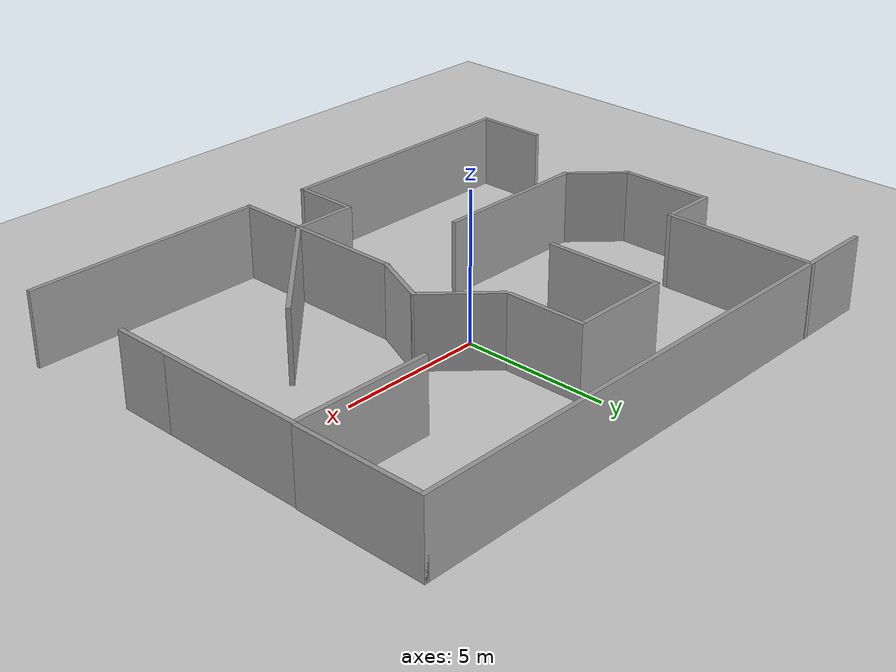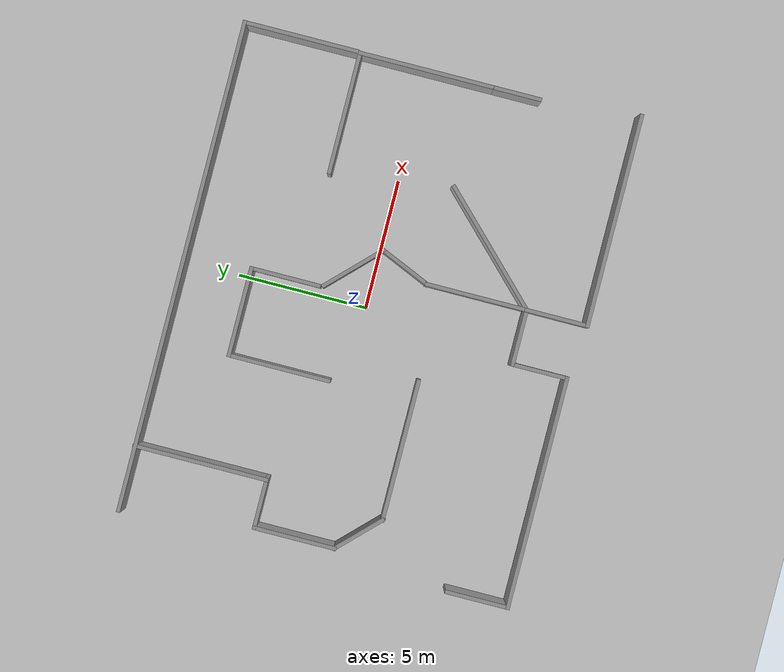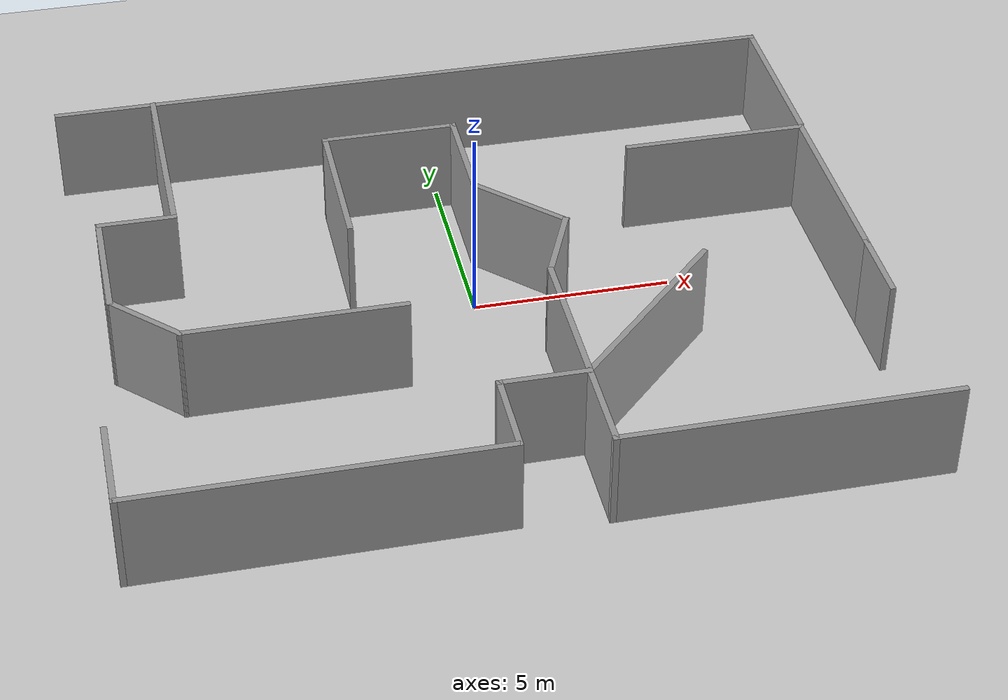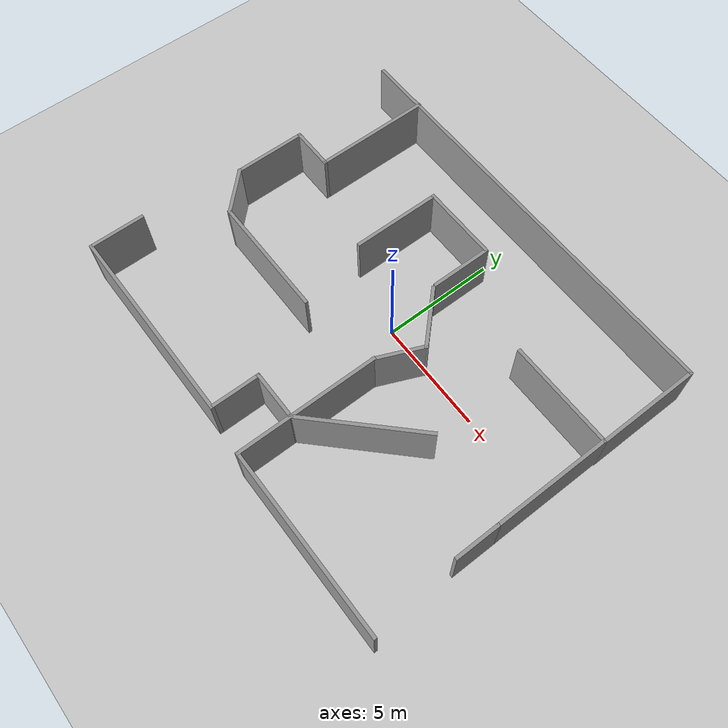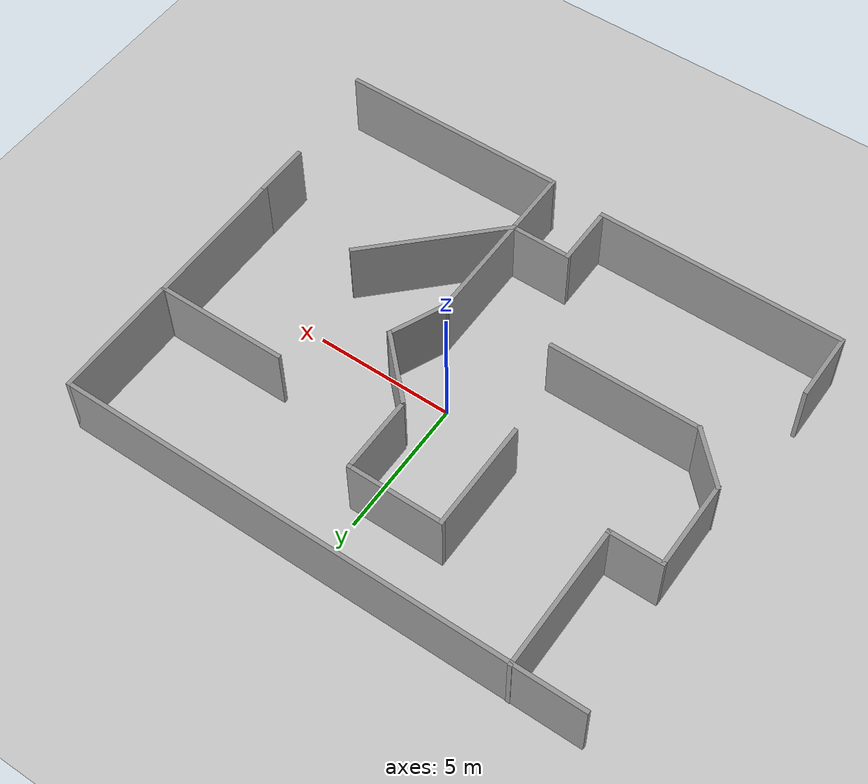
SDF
<sdf version="1.6">
 <world name="default">
  <model name="ground_plane">
   <static>1</static>
   <link name="link">
    <collision name="collision">
     <geometry><plane><normal>0 0 1</normal><size>100 100</size></plane></geometry>
     <surface><friction><ode><mu>100</mu><mu2>50</mu2></ode></friction></surface>
    </collision>
    <visual name="visual">
     <cast_shadows>0</cast_shadows>
     <geometry><plane><normal>0 0 1</normal><size>100 100</size></plane></geometry>
     <material>
      <script><uri>file://media/materials/scripts/gazebo.material</uri><name>Gazebo/Grey</name></script>
     </material>
    </visual>
   </link>
  </model>
  <light name="sun" type="directional">
   <pose>0 0 10 0 -0 0</pose>
   <diffuse>0.8 0.8 0.8 1</diffuse>
   <specular>0.2 0.2 0.2 1</specular>
   <attenuation>
    <range>1000</range>
    <constant>0.9</constant>
    <linear>0.01</linear>
    <quadratic>0.001</quadratic>
   </attenuation>
   <direction>-0.5 0.1 -0.9</direction>
  </light>
  <gravity>0 0 -9.8</gravity>
  <magnetic_field>6e-06 2.3e-05 -4.2e-05</magnetic_field>
  <atmosphere type="adiabatic"/>
  <physics name="default_physics" default="0" type="ode">
   <max_step_size>0.001</max_step_size>
   <real_time_factor>1</real_time_factor>
   <real_time_update_rate>1000</real_time_update_rate>
  </physics>
  <scene><ambient>0.4 0.4 0.4 1</ambient><background>0.7 0.7 0.7 1</background><shadows>1</shadows></scene>
  <audio><device>default</device></audio>
  <spherical_coordinates>
   <surface_model>EARTH_WGS84</surface_model>
   <latitude_deg>0</latitude_deg>
   <longitude_deg>0</longitude_deg>
   <elevation>0</elevation>
   <heading_deg>0</heading_deg>
  </spherical_coordinates>
  <model name="MAZE">
   <pose>-0.043507 -0.573073 0 0 -0 0</pose>
   <link name="Wall_1">
    <collision name="Wall_1_Collision">
     <geometry><box><size>19 0.15 2.5</size></box></geometry>
     <pose>0 0 1.25 0 -0 0</pose>
    </collision>
    <visual name="Wall_1_Visual">
     <pose>0 0 1.25 0 -0 0</pose>
     <geometry><box><size>19 0.15 2.5</size></box></geometry>
     <material>
      <script><uri>file://media/materials/scripts/gazebo.material</uri><name>Gazebo/Grey</name></script>
      <ambient>1 1 1 1</ambient>
     </material>
     <meta><layer>0</layer></meta>
    </visual>
    <pose>-0.162162 7.62261 0 0 -0 0</pose>
   </link>
   <link name="Wall_10">
    <collision name="Wall_10_Collision">
     <geometry><box><size>2 0.15 2.5</size></box></geometry>
     <pose>0 0 1.25 0 -0 0</pose>
    </collision>
    <visual name="Wall_10_Visual">
     <pose>0 0 1.25 0 -0 0</pose>
     <geometry><box><size>2 0.15 2.5</size></box></geometry>
     <material>
      <script><uri>file://media/materials/scripts/gazebo.material</uri><name>Gazebo/Grey</name></script>
      <ambient>1 1 1 1</ambient>
     </material>
     <meta><layer>0</layer></meta>
    </visual>
    <pose>-8.02276 2.54246 0 0 -0 3.14159</pose>
   </link>
   <link name="Wall_11">
    <collision name="Wall_11_Collision">
     <geometry><box><size>3.25 0.15 2.5</size></box></geometry>
     <pose>0 0 1.25 0 -0 0</pose>
    </collision>
    <visual name="Wall_11_Visual">
     <pose>0 0 1.25 0 -0 0</pose>
     <geometry><box><size>3.25 0.15 2.5</size></box></geometry>
     <material>
      <script><uri>file://media/materials/scripts/gazebo.material</uri><name>Gazebo/Grey</name></script>
      <ambient>1 1 1 1</ambient>
     </material>
     <meta><layer>0</layer></meta>
    </visual>
    <pose>-8.94776 0.992462 0 0 -0 -1.5708</pose>
   </link>
   <link name="Wall_12">
    <collision name="Wall_12_Collision">
     <geometry><box><size>2.25 0.15 2.5</size></box></geometry>
     <pose>0 0 1.25 0 -0 0</pose>
    </collision>
    <visual name="Wall_12_Visual">
     <pose>0 0 1.25 0 -0 0</pose>
     <geometry><box><size>2.25 0.15 2.5</size></box></geometry>
     <material>
      <script><uri>file://media/materials/scripts/gazebo.material</uri><name>Gazebo/Grey</name></script>
      <ambient>1 1 1 1</ambient>
     </material>
     <meta><layer>0</layer></meta>
    </visual>
    <pose>-8.2053 -1.3 0 0 -0 -0.785398</pose>
   </link>
   <link name="Wall_13">
    <collision name="Wall_13_Collision">
     <geometry><box><size>5.5 0.15 2.5</size></box></geometry>
     <pose>0 0 1.25 0 -0 0</pose>
    </collision>
    <visual name="Wall_13_Visual">
     <pose>0 0 1.25 0 -0 0</pose>
     <geometry><box><size>5.5 0.15 2.5</size></box></geometry>
     <material>
      <script><uri>file://media/materials/scripts/gazebo.material</uri><name>Gazebo/Grey</name></script>
      <ambient>1 1 1 1</ambient>
     </material>
     <meta><layer>0</layer></meta>
    </visual>
    <pose>-4.78784 -2.04246 0 0 -0 0</pose>
   </link>
   <link name="Wall_21">
    <collision name="Wall_21_Collision">
     <geometry><box><size>8.25 0.15 2.5</size></box></geometry>
     <pose>0 0 1.25 0 -0 0</pose>
    </collision>
    <visual name="Wall_21_Visual">
     <pose>0 0 1.25 0 -0 0</pose>
     <geometry><box><size>8.25 0.15 2.5</size></box></geometry>
     <material>
      <script><uri>file://media/materials/scripts/gazebo.material</uri><name>Gazebo/Grey</name></script>
      <ambient>1 1 1 1</ambient>
     </material>
     <meta><layer>0</layer></meta>
    </visual>
    <pose>5.53716 -7.64246 0 0 -0 3.14159</pose>
   </link>
   <link name="Wall_22">
    <collision name="Wall_22_Collision">
     <geometry><box><size>2.5 0.15 2.5</size></box></geometry>
     <pose>0 0 1.25 0 -0 0</pose>
    </collision>
    <visual name="Wall_22_Visual">
     <pose>0 0 1.25 0 -0 0</pose>
     <geometry><box><size>2.5 0.15 2.5</size></box></geometry>
     <material>
      <script><uri>file://media/materials/scripts/gazebo.material</uri><name>Gazebo/Grey</name></script>
      <ambient>1 1 1 1</ambient>
     </material>
     <meta><layer>0</layer></meta>
    </visual>
    <pose>1.48716 -6.46746 0 0 -0 1.5708</pose>
   </link>
   <link name="Wall_23">
    <collision name="Wall_23_Collision">
     <geometry><box><size>2.25 0.15 2.5</size></box></geometry>
     <pose>0 0 1.25 0 -0 0</pose>
    </collision>
    <visual name="Wall_23_Visual">
     <pose>0 0 1.25 0 -0 0</pose>
     <geometry><box><size>2.25 0.15 2.5</size></box></geometry>
     <material>
      <script><uri>file://media/materials/scripts/gazebo.material</uri><name>Gazebo/Grey</name></script>
      <ambient>1 1 1 1</ambient>
     </material>
     <meta><layer>0</layer></meta>
    </visual>
    <pose>0.437162 -5.29246 0 0 -0 3.14159</pose>
   </link>
   <link name="Wall_24">
    <collision name="Wall_24_Collision">
     <geometry><box><size>2.25 0.15 2.5</size></box></geometry>
     <pose>0 0 1.25 0 -0 0</pose>
    </collision>
    <visual name="Wall_24_Visual">
     <pose>0 0 1.25 0 -0 0</pose>
     <geometry><box><size>2.25 0.15 2.5</size></box></geometry>
     <material>
      <script><uri>file://media/materials/scripts/gazebo.material</uri><name>Gazebo/Grey</name></script>
      <ambient>1 1 1 1</ambient>
     </material>
     <meta><layer>0</layer></meta>
    </visual>
    <pose>-0.612838 -6.34246 0 0 -0 -1.5708</pose>
   </link>
   <link name="Wall_25">
    <collision name="Wall_25_Collision">
     <geometry><box><size>9 0.15 2.5</size></box></geometry>
     <pose>0 0 1.25 0 -0 0</pose>
    </collision>
    <visual name="Wall_25_Visual">
     <pose>0 0 1.25 0 -0 0</pose>
     <geometry><box><size>9 0.15 2.5</size></box></geometry>
     <material>
      <script><uri>file://media/materials/scripts/gazebo.material</uri><name>Gazebo/Grey</name></script>
      <ambient>1 1 1 1</ambient>
     </material>
     <meta><layer>0</layer></meta>
    </visual>
    <pose>-5.03784 -7.39246 0 0 -0 3.14159</pose>
   </link>
   <link name="Wall_26">
    <collision name="Wall_26_Collision">
     <geometry><box><size>2.5 0.15 2.5</size></box></geometry>
     <pose>0 0 1.25 0 -0 0</pose>
    </collision>
    <visual name="Wall_26_Visual">
     <pose>0 0 1.25 0 -0 0</pose>
     <geometry><box><size>2.5 0.15 2.5</size></box></geometry>
     <material>
      <script><uri>file://media/materials/scripts/gazebo.material</uri><name>Gazebo/Grey</name></script>
      <ambient>1 1 1 1</ambient>
     </material>
     <meta><layer>0</layer></meta>
    </visual>
    <pose>-9.46284 -6.21746 0 0 -0 1.5708</pose>
   </link>
   <link name="Wall_29">
    <collision name="Wall_29_Collision">
     <geometry><box><size>2.75 0.15 2.5</size></box></geometry>
     <pose>0 0 1.25 0 -0 0</pose>
    </collision>
    <visual name="Wall_29_Visual">
     <pose>0 0 1.25 0 -0 0</pose>
     <geometry><box><size>2.75 0.15 2.5</size></box></geometry>
     <material>
      <script><uri>file://media/materials/scripts/gazebo.material</uri><name>Gazebo/Grey</name></script>
      <ambient>1 1 1 1</ambient>
     </material>
     <meta><layer>0</layer></meta>
    </visual>
    <pose>1.39023 1.37555 0 0 -0 -0.785398</pose>
   </link>
   <link name="Wall_31">
    <collision name="Wall_31_Collision">
     <geometry><box><size>4 0.15 2.5</size></box></geometry>
     <pose>0 0 1.25 0 -0 0</pose>
    </collision>
    <visual name="Wall_31_Visual">
     <pose>0 0 1.25 0 -0 0</pose>
     <geometry><box><size>4 0.15 2.5</size></box></geometry>
     <material>
      <script><uri>file://media/materials/scripts/gazebo.material</uri><name>Gazebo/Grey</name></script>
      <ambient>1 1 1 1</ambient>
     </material>
     <meta><layer>0</layer></meta>
    </visual>
    <pose>1.48716 -3.36746 0 0 -0 1.5708</pose>
   </link>
   <link name="Wall_33">
    <collision name="Wall_33_Collision">
     <geometry><box><size>3.5 0.15 2.5</size></box></geometry>
     <pose>0 0 1.25 0 -0 0</pose>
    </collision>
    <visual name="Wall_33_Visual">
     <pose>0 0 1.25 0 -0 0</pose>
     <geometry><box><size>3.5 0.15 2.5</size></box></geometry>
     <material>
      <script><uri>file://media/materials/scripts/gazebo.material</uri><name>Gazebo/Grey</name></script>
      <ambient>1 1 1 1</ambient>
     </material>
     <meta><layer>0</layer></meta>
    </visual>
    <pose>-1.25752 5.07667 0 0 -0 3.14159</pose>
   </link>
   <link name="Wall_34">
    <collision name="Wall_34_Collision">
     <geometry><box><size>4 0.15 2.5</size></box></geometry>
     <pose>0 0 1.25 0 -0 0</pose>
    </collision>
    <visual name="Wall_34_Visual">
     <pose>0 0 1.25 0 -0 0</pose>
     <geometry><box><size>4 0.15 2.5</size></box></geometry>
     <material>
      <script><uri>file://media/materials/scripts/gazebo.material</uri><name>Gazebo/Grey</name></script>
      <ambient>1 1 1 1</ambient>
     </material>
     <meta><layer>0</layer></meta>
    </visual>
    <pose>-2.93252 3.15166 0 0 -0 -1.5708</pose>
   </link>
   <link name="Wall_38">
    <collision name="Wall_38_Collision">
     <geometry><box><size>2.75 0.15 2.5</size></box></geometry>
     <pose>0 0 1.25 0 -0 0</pose>
    </collision>
    <visual name="Wall_38_Visual">
     <pose>0 0 1.25 0 -0 0</pose>
     <geometry><box><size>2.75 0.15 2.5</size></box></geometry>
     <material>
      <script><uri>file://media/materials/scripts/gazebo.material</uri><name>Gazebo/Grey</name></script>
      <ambient>1 1 1 1</ambient>
     </material>
     <meta><layer>0</layer></meta>
    </visual>
    <pose>0.417483 3.77666 0 0 -0 -1.5708</pose>
   </link>
   <link name="Wall_40">
    <collision name="Wall_40_Collision">
     <geometry><box><size>2.21918 0.15 2.5</size></box></geometry>
     <pose>0 0 1.25 0 -0 0</pose>
    </collision>
    <visual name="Wall_40_Visual">
     <pose>0 0 1.25 0 -0 0</pose>
     <geometry><box><size>2.21918 0.15 2.5</size></box></geometry>
     <material>
      <script><uri>file://media/materials/scripts/gazebo.material</uri><name>Gazebo/Grey</name></script>
      <ambient>1 1 1 1</ambient>
     </material>
     <meta><layer>0</layer></meta>
    </visual>
    <pose>1.89831 -0.493077 0 0 -0 1.16211</pose>
   </link>
   <link name="Wall_42">
    <collision name="Wall_42_Collision">
     <geometry><box><size>5.25 0.15 2.5</size></box></geometry>
     <pose>0 0 1.25 0 -0 0</pose>
    </collision>
    <visual name="Wall_42_Visual">
     <pose>0 0 1.25 0 -0 0</pose>
     <geometry><box><size>5.25 0.15 2.5</size></box></geometry>
     <material>
      <script><uri>file://media/materials/scripts/gazebo.material</uri><name>Gazebo/Grey</name></script>
      <ambient>1 1 1 1</ambient>
     </material>
     <meta><layer>0</layer></meta>
    </visual>
    <pose>9.23436 0.601893 0 0 -0 -1.5708</pose>
   </link>
   <link name="Wall_43">
    <collision name="Wall_43_Collision">
     <geometry><box><size>2 0.15 2.5</size></box></geometry>
     <pose>0 0 1.25 0 -0 0</pose>
    </collision>
    <visual name="Wall_43_Visual">
     <pose>0 0 1.25 0 -0 0</pose>
     <geometry><box><size>2 0.15 2.5</size></box></geometry>
     <material>
      <script><uri>file://media/materials/scripts/gazebo.material</uri><name>Gazebo/Grey</name></script>
      <ambient>1 1 1 1</ambient>
     </material>
     <meta><layer>0</layer></meta>
    </visual>
    <pose>9.23436 -2.87311 0 0 -0 -1.5708</pose>
   </link>
   <link name="Wall_45">
    <collision name="Wall_45_Collision">
     <geometry><box><size>5.5 0.15 2.5</size></box></geometry>
     <pose>0 0 1.25 0 -0 0</pose>
    </collision>
    <visual name="Wall_45_Visual">
     <pose>0 0 1.25 0 -0 0</pose>
     <geometry><box><size>5.5 0.15 2.5</size></box></geometry>
     <material>
      <script><uri>file://media/materials/scripts/gazebo.material</uri><name>Gazebo/Grey</name></script>
      <ambient>1 1 1 1</ambient>
     </material>
     <meta><layer>0</layer></meta>
    </visual>
    <pose>3.37867 -3.40095 0 0 -0 0.785398</pose>
   </link>
   <link name="Wall_5">
    <collision name="Wall_5_Collision">
     <geometry><box><size>4.5 0.15 2.5</size></box></geometry>
     <pose>0 0 1.25 0 -0 0</pose>
    </collision>
    <visual name="Wall_5_Visual">
     <pose>0 0 1.25 0 -0 0</pose>
     <geometry><box><size>4.5 0.15 2.5</size></box></geometry>
     <material>
      <script><uri>file://media/materials/scripts/gazebo.material</uri><name>Gazebo/Grey</name></script>
      <ambient>1 1 1 1</ambient>
     </material>
     <meta><layer>0</layer></meta>
    </visual>
    <pose>9.26284 5.44761 0 0 -0 -1.5708</pose>
   </link>
   <link name="Wall_7">
    <collision name="Wall_7_Collision">
     <geometry><box><size>4.75 0.15 2.5</size></box></geometry>
     <pose>0 0 1.25 0 -0 0</pose>
    </collision>
    <visual name="Wall_7_Visual">
     <pose>0 0 1.25 0 -0 0</pose>
     <geometry><box><size>4.75 0.15 2.5</size></box></geometry>
     <material>
      <script><uri>file://media/materials/scripts/gazebo.material</uri><name>Gazebo/Grey</name></script>
      <ambient>1 1 1 1</ambient>
     </material>
     <meta><layer>0</layer></meta>
    </visual>
    <pose>6.93436 3.15189 0 0 -0 0</pose>
   </link>
   <link name="Wall_9">
    <collision name="Wall_9_Collision">
     <geometry><box><size>5.25 0.15 2.5</size></box></geometry>
     <pose>0 0 1.25 0 -0 0</pose>
    </collision>
    <visual name="Wall_9_Visual">
     <pose>0 0 1.25 0 -0 0</pose>
     <geometry><box><size>5.25 0.15 2.5</size></box></geometry>
     <material>
      <script><uri>file://media/materials/scripts/gazebo.material</uri><name>Gazebo/Grey</name></script>
      <ambient>1 1 1 1</ambient>
     </material>
     <meta><layer>0</layer></meta>
    </visual>
    <pose>-7.09776 5.09246 0 0 -0 -1.5708</pose>
   </link>
   <static>1</static>
  </model>
 </world>
</sdf>
